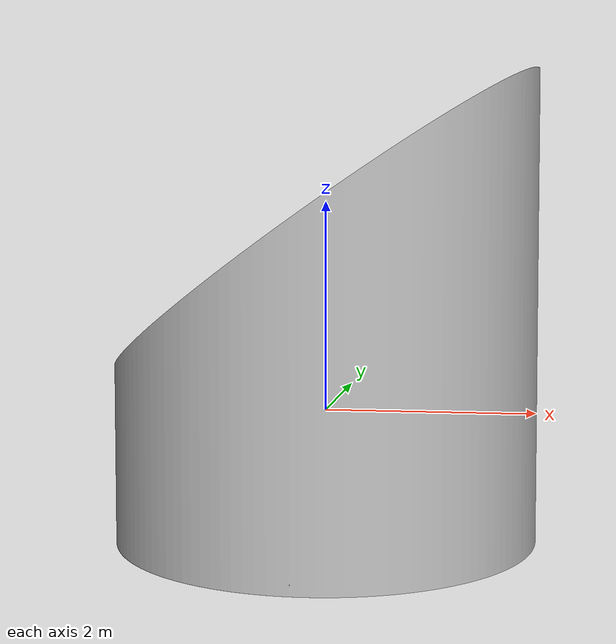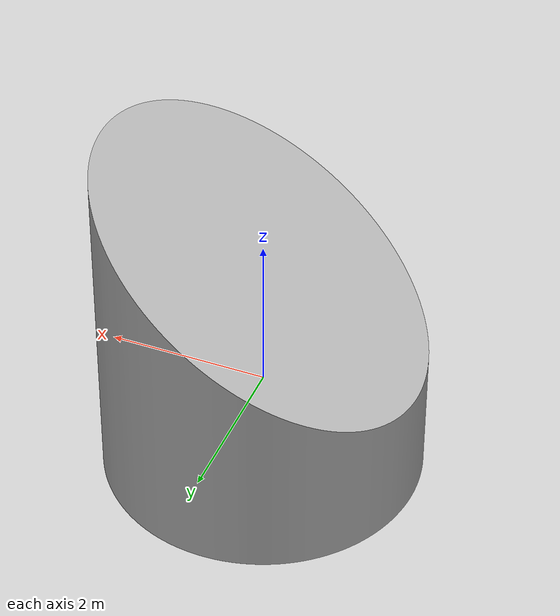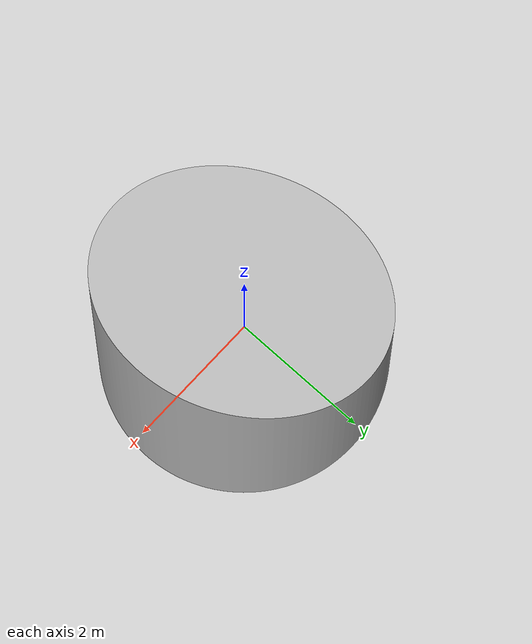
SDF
<?xml version="1.0" encoding="UTF-8"?>
<sdf version="1.5">
  <model name="sphere">
    <static>true</static>
    <pose>0.0 0.0 0.0 0.0 0.0 0.0</pose>
    <link name="link">
      <pose>0.0 0.0 1.0 0.0 0.0 0.0</pose>
      <inertial>
        <mass>1.0</mass>
        <inertia> <!-- inertias are tricky to compute -->
          <ixx>0.083</ixx>  <!-- for a box: ixx = 0.083 * mass * (y*y + z*z) -->
          <ixy>0.0</ixy>    <!-- for a box: ixy = 0 -->
          <ixz>0.0</ixz>    <!-- for a box: ixz = 0 -->
          <iyy>0.083</iyy>  <!-- for a box: iyy = 0.083 * mass * (x*x + z*z) -->
          <iyz>0.0</iyz>    <!-- for a box: iyz = 0 -->
          <izz>0.083</izz>  <!-- for a box: izz = 0.083 * mass * (x*x + y*y) -->
        </inertia>
      </inertial>
      <collision name="collision">
        <geometry>
          <mesh>
            <uri>model://tol_arena/meshes/BirthClinic.dae</uri>
          </mesh>
        </geometry>
      </collision>
      <visual name="visual">
        <geometry>
          <mesh>
            <uri>model://tol_arena/meshes/BirthClinic.dae</uri>
          </mesh>
        </geometry>
      </visual>
    </link>
  </model>
</sdf>
